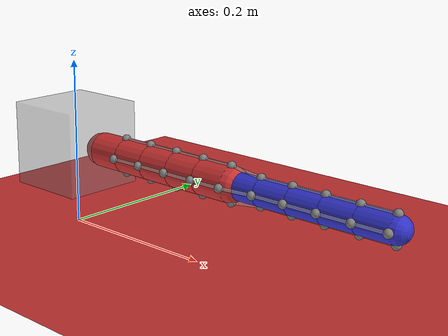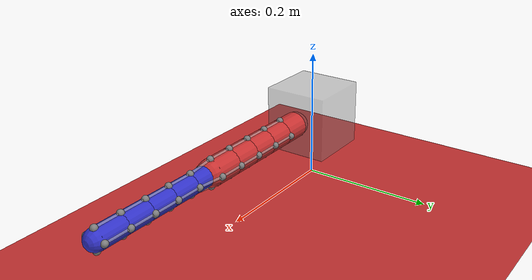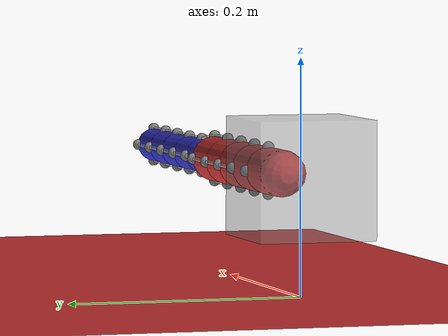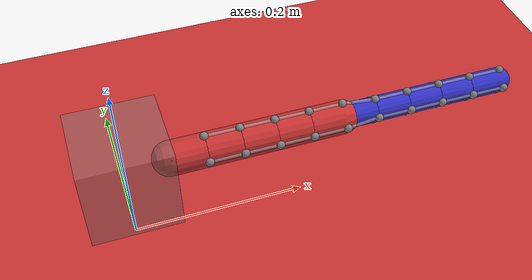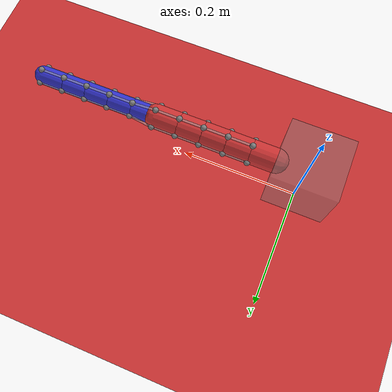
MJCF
<mujoco model="Elephant Trunk">
    <compiler angle="degree" coordinate="local" inertiafromgeom="true"/>

    <option timestep="0.002" integrator="implicit" gravity="0 0 -9.81">
        <flag energy="enable"/>
    </option>

    <asset>
        <texture type="skybox" builtin="gradient" rgb1="0.3 0.5 0.7" rgb2="0 0 0" width="512" height="512"/>
        <texture name="texplane" type="2d" builtin="checker" rgb1=".2 .3 .4" rgb2=".1 .2 .3" width="512" height="512" mark="none"/>
        <material name="matplane" reflectance="0.3" texture="texplane" texrepeat="1 1" texuniform="true"/>
    </asset>

    <default>
        <joint stiffness="100.0" damping="10.0" armature="0.05" limited="true" range="-12 12"/>
        <tendon rgba="0.8 0.8 0.8 0.5"/>
        <geom density="1500" rgba="0.8 0.2 0.2 1"/>
        <motor ctrlrange="-1 1" gear="500"/>
    </default>

    <visual>
        <headlight ambient="0.4 0.4 0.4" diffuse="0.8 0.8 0.8" specular="0.1 0.1 0.1"/>
        <quality shadowsize="0"/>
    </visual>

    <worldbody>
        <light directional="true" pos="0 0 5" dir="0 0 -1"/>
        <geom name="floor" pos="0 0 0" size="0 0 .25" type="plane" material="matplane"/>

        <!-- Base: Cube & Semi-transparent -->
        <body name="base" pos="0 0 0.1">
            <geom name="base_geom" type="box" size="0.05 0.05 0.05" rgba="0.5 0.5 0.5 0.4"/>
            <camera name="side" pos="0.5 -1.0 0.2" xyaxes="1 0 0 0 0 1"/>

            <!-- Proximal Segments (1-5) - Horizontal +X -->
            <body name="p1" pos="0.05 0 0">
                <joint name="p1_pitch" type="hinge" axis="0 1 0" pos="0 0 0"/>
                <joint name="p1_yaw" type="hinge" axis="0 0 1" pos="0 0 0"/>
                <geom name="p1_geom" type="capsule" size="0.02" fromto="0 0 0 0.04 0 0" rgba="0.8 0.2 0.2 1"/>
                <!-- Sites for tendons -->
                <site name="p1_s1" pos="0.04 0.02 0"/> <site name="p1_s2" pos="0.04 -0.02 0"/>
                <site name="p1_s3" pos="0.04 0 0.02"/> <site name="p1_s4" pos="0.04 0 -0.02"/>

                <body name="p2" pos="0.04 0 0">
                    <joint name="p2_pitch" type="hinge" axis="0 1 0" pos="0 0 0"/>
                    <joint name="p2_yaw" type="hinge" axis="0 0 1" pos="0 0 0"/>
                    <geom name="p2_geom" type="capsule" size="0.02" fromto="0 0 0 0.04 0 0" rgba="0.8 0.2 0.2 1"/>
                    <site name="p2_s1" pos="0.04 0.02 0"/> <site name="p2_s2" pos="0.04 -0.02 0"/>
                    <site name="p2_s3" pos="0.04 0 0.02"/> <site name="p2_s4" pos="0.04 0 -0.02"/>

                    <body name="p3" pos="0.04 0 0">
                        <joint name="p3_pitch" type="hinge" axis="0 1 0" pos="0 0 0"/>
                        <joint name="p3_yaw" type="hinge" axis="0 0 1" pos="0 0 0"/>
                        <geom name="p3_geom" type="capsule" size="0.02" fromto="0 0 0 0.04 0 0" rgba="0.8 0.2 0.2 1"/>
                        <site name="p3_s1" pos="0.04 0.02 0"/> <site name="p3_s2" pos="0.04 -0.02 0"/>
                        <site name="p3_s3" pos="0.04 0 0.02"/> <site name="p3_s4" pos="0.04 0 -0.02"/>

                        <body name="p4" pos="0.04 0 0">
                            <joint name="p4_pitch" type="hinge" axis="0 1 0" pos="0 0 0"/>
                            <joint name="p4_yaw" type="hinge" axis="0 0 1" pos="0 0 0"/>
                            <geom name="p4_geom" type="capsule" size="0.02" fromto="0 0 0 0.04 0 0" rgba="0.8 0.2 0.2 1"/>
                            <site name="p4_s1" pos="0.04 0.02 0"/> <site name="p4_s2" pos="0.04 -0.02 0"/>
                            <site name="p4_s3" pos="0.04 0 0.02"/> <site name="p4_s4" pos="0.04 0 -0.02"/>

                            <body name="p5" pos="0.04 0 0">
                                <joint name="p5_pitch" type="hinge" axis="0 1 0" pos="0 0 0"/>
                                <joint name="p5_yaw" type="hinge" axis="0 0 1" pos="0 0 0"/>
                                <geom name="p5_geom" type="capsule" size="0.02" fromto="0 0 0 0.04 0 0" rgba="0.8 0.2 0.2 1"/>
                                <site name="p_tip1" pos="0.04 0.02 0"/> <site name="p_tip2" pos="0.04 -0.02 0"/>
                                <site name="p_tip3" pos="0.04 0 0.02"/> <site name="p_tip4" pos="0.04 0 -0.02"/>
                                <site name="p5_s1" pos="0.04 0.02 0"/> <site name="p5_s2" pos="0.04 -0.02 0"/>
                                <site name="p5_s3" pos="0.04 0 0.02"/> <site name="p5_s4" pos="0.04 0 -0.02"/>

                                <!-- Distal Segments (6-10) -->
                                <body name="d6" pos="0.04 0 0">
                                    <joint name="d6_pitch" type="hinge" axis="0 1 0" pos="0 0 0"/>
                                    <joint name="d6_yaw" type="hinge" axis="0 0 1" pos="0 0 0"/>
                                    <geom name="d6_geom" type="capsule" size="0.015" fromto="0 0 0 0.04 0 0" rgba="0.2 0.2 0.8 1"/>
                                    <site name="d6_s1" pos="0.04 0.015 0"/> <site name="d6_s2" pos="0.04 -0.015 0"/>
                                    <site name="d6_s3" pos="0.04 0 0.015"/> <site name="d6_s4" pos="0.04 0 -0.015"/>

                                    <body name="d7" pos="0.04 0 0">
                                        <joint name="d7_pitch" type="hinge" axis="0 1 0" pos="0 0 0"/>
                                        <joint name="d7_yaw" type="hinge" axis="0 0 1" pos="0 0 0"/>
                                        <geom name="d7_geom" type="capsule" size="0.015" fromto="0 0 0 0.04 0 0" rgba="0.2 0.2 0.8 1"/>
                                        <site name="d7_s1" pos="0.04 0.015 0"/> <site name="d7_s2" pos="0.04 -0.015 0"/>
                                        <site name="d7_s3" pos="0.04 0 0.015"/> <site name="d7_s4" pos="0.04 0 -0.015"/>

                                        <body name="d8" pos="0.04 0 0">
                                            <joint name="d8_pitch" type="hinge" axis="0 1 0" pos="0 0 0"/>
                                            <joint name="d8_yaw" type="hinge" axis="0 0 1" pos="0 0 0"/>
                                            <geom name="d8_geom" type="capsule" size="0.015" fromto="0 0 0 0.04 0 0" rgba="0.2 0.2 0.8 1"/>
                                            <site name="d8_s1" pos="0.04 0.015 0"/> <site name="d8_s2" pos="0.04 -0.015 0"/>
                                            <site name="d8_s3" pos="0.04 0 0.015"/> <site name="d8_s4" pos="0.04 0 -0.015"/>

                                            <body name="d9" pos="0.04 0 0">
                                                <joint name="d9_pitch" type="hinge" axis="0 1 0" pos="0 0 0"/>
                                                <joint name="d9_yaw" type="hinge" axis="0 0 1" pos="0 0 0"/>
                                                <geom name="d9_geom" type="capsule" size="0.015" fromto="0 0 0 0.04 0 0" rgba="0.2 0.2 0.8 1"/>
                                                <site name="d9_s1" pos="0.04 0.015 0"/> <site name="d9_s2" pos="0.04 -0.015 0"/>
                                                <site name="d9_s3" pos="0.04 0 0.015"/> <site name="d9_s4" pos="0.04 0 -0.015"/>

                                                <body name="d10" pos="0.04 0 0">
                                                    <joint name="d10_pitch" type="hinge" axis="0 1 0" pos="0 0 0"/>
                                                    <joint name="d10_yaw" type="hinge" axis="0 0 1" pos="0 0 0"/>
                                                    <geom name="d10_geom" type="capsule" size="0.015" fromto="0 0 0 0.04 0 0" rgba="0.2 0.2 0.8 1"/>
                                                    <site name="d_tip1" pos="0.04 0.015 0"/> <site name="d_tip2" pos="0.04 -0.015 0"/>
                                                    <site name="d_tip3" pos="0.04 0 0.015"/> <site name="d_tip4" pos="0.04 0 -0.015"/>
                                                </body>
                                            </body>
                                        </body>
                                    </body>
                                </body>
                            </body>
                        </body>
                    </body>
                </body>
            </body>
        </body>
    </worldbody>

    <tendon>
        <!-- Proximal Tendons -->
        <spatial name="tp1" width="0.002"> <site site="p_tip1"/> <site site="p4_s1"/> <site site="p3_s1"/> <site site="p2_s1"/> <site site="p1_s1"/> </spatial>
        <spatial name="tp2" width="0.002"> <site site="p_tip2"/> <site site="p4_s2"/> <site site="p3_s2"/> <site site="p2_s2"/> <site site="p1_s2"/> </spatial>
        <spatial name="tp3" width="0.002"> <site site="p_tip3"/> <site site="p4_s3"/> <site site="p3_s3"/> <site site="p2_s3"/> <site site="p1_s3"/> </spatial>
        <spatial name="tp4" width="0.002"> <site site="p_tip4"/> <site site="p4_s4"/> <site site="p3_s4"/> <site site="p2_s4"/> <site site="p1_s4"/> </spatial>

        <!-- Distal Tendons -->
        <spatial name="td1" width="0.002"> <site site="d_tip1"/> <site site="d9_s1"/> <site site="d8_s1"/> <site site="d7_s1"/> <site site="d6_s1"/> <site site="p5_s1"/> <site site="p_tip1"/> <site site="p4_s1"/> <site site="p3_s1"/> <site site="p2_s1"/> <site site="p1_s1"/> </spatial>
        <spatial name="td2" width="0.002"> <site site="d_tip2"/> <site site="d9_s2"/> <site site="d8_s2"/> <site site="d7_s2"/> <site site="d6_s2"/> <site site="p5_s2"/> <site site="p_tip2"/> <site site="p4_s2"/> <site site="p3_s2"/> <site site="p2_s2"/> <site site="p1_s2"/> </spatial>
        <spatial name="td3" width="0.002"> <site site="d_tip3"/> <site site="d9_s3"/> <site site="d8_s3"/> <site site="d7_s3"/> <site site="d6_s3"/> <site site="p5_s3"/> <site site="p_tip3"/> <site site="p4_s3"/> <site site="p3_s3"/> <site site="p2_s3"/> <site site="p1_s3"/> </spatial>
        <spatial name="td4" width="0.002"> <site site="d_tip4"/> <site site="d9_s4"/> <site site="d8_s4"/> <site site="d7_s4"/> <site site="d6_s4"/> <site site="p5_s4"/> <site site="p_tip4"/> <site site="p4_s4"/> <site site="p3_s4"/> <site site="p2_s4"/> <site site="p1_s4"/> </spatial>
    </tendon>

    <actuator>
        <!-- Proximal Segment (P) -->
        <motor name="prox_yaw_p"   tendon="tp1"/>
        <motor name="prox_yaw_n"   tendon="tp2"/>
        <motor name="prox_pitch_p" tendon="tp3"/>
        <motor name="prox_pitch_n" tendon="tp4"/>

        <!-- Distal Segment (D) -->
        <motor name="dist_yaw_p"   tendon="td1"/>
        <motor name="dist_yaw_n"   tendon="td2"/>
        <motor name="dist_pitch_p" tendon="td3"/>
        <motor name="dist_pitch_n" tendon="td4"/>
    </actuator>
</mujoco>
